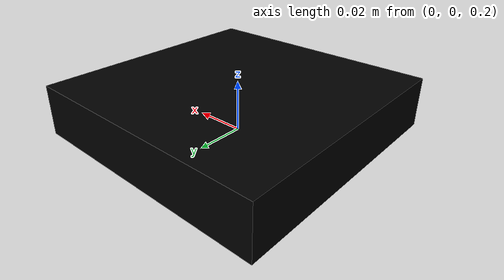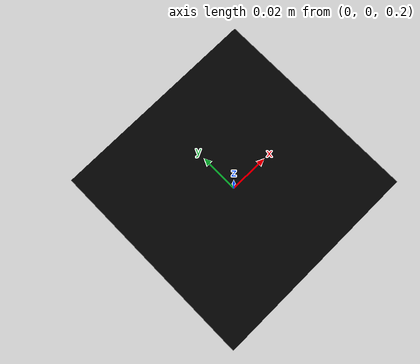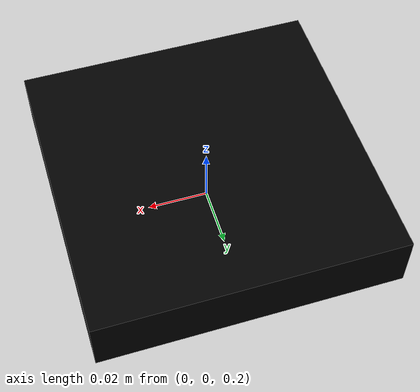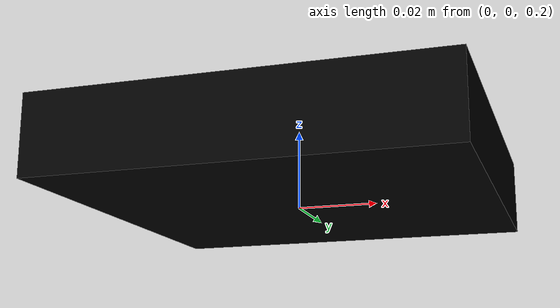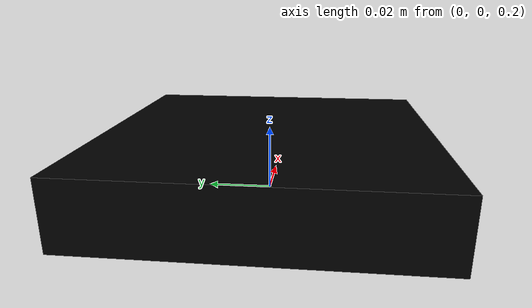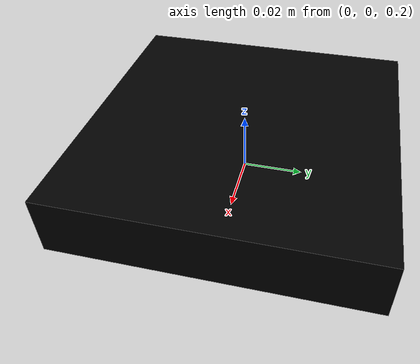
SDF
<sdf version='1.11'>
  <model name='wheeled_robot'>
    <link name='base_footprint_link'>
      <inertial>
        <pose>0 0 0.20999999999999999 0 0 0</pose>
        <mass>0.54359999999999997</mass>
        <inertia>
          <ixx>0.00047111999999999848</ixx>
          <ixy>0</ixy>
          <ixz>0</ixz>
          <iyy>0.00047111999999999848</iyy>
          <iyz>0</iyz>
          <izz>0.00090600000000000001</izz>
        </inertia>
      </inertial>
      <collision name='base_footprint_link_fixed_joint_lump__base_link_collision'>
        <pose>0 0 0.20999999999999999 0 0 0</pose>
        <geometry>
          <box>
            <size>0.10000000000000001 0.10000000000000001 0.02</size>
          </box>
        </geometry>
      </collision>
      <visual name='base_footprint_link_fixed_joint_lump__base_link_visual'>
        <pose>0 0 0.20999999999999999 0 0 0</pose>
        <geometry>
          <box>
            <size>0.10000000000000001 0.10000000000000001 0.02</size>
          </box>
        </geometry>
        <material>
          <diffuse>0 0 0 1</diffuse>
          <ambient>0 0 0 1</ambient>
        </material>
      </visual>
    </link>
    <plugin name='gz::sim::systems::JointStatePublisher' filename='gz-sim-joint-state-publisher-system'>
      <topic>joint_states</topic>
    </plugin>
    <frame name='base_footprint_base_joint' attached_to='base_footprint_link'>
      <pose>0 0 0.20000000000000001 0 0 0</pose>
    </frame>
    <frame name='base_link' attached_to='base_footprint_base_joint'>
      <pose>0 0 0 0 0 0</pose>
    </frame>
  </model>
</sdf>
